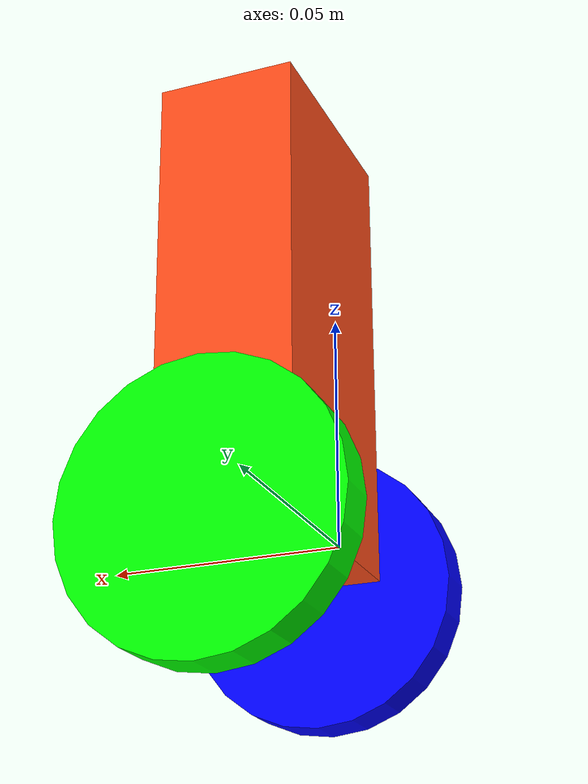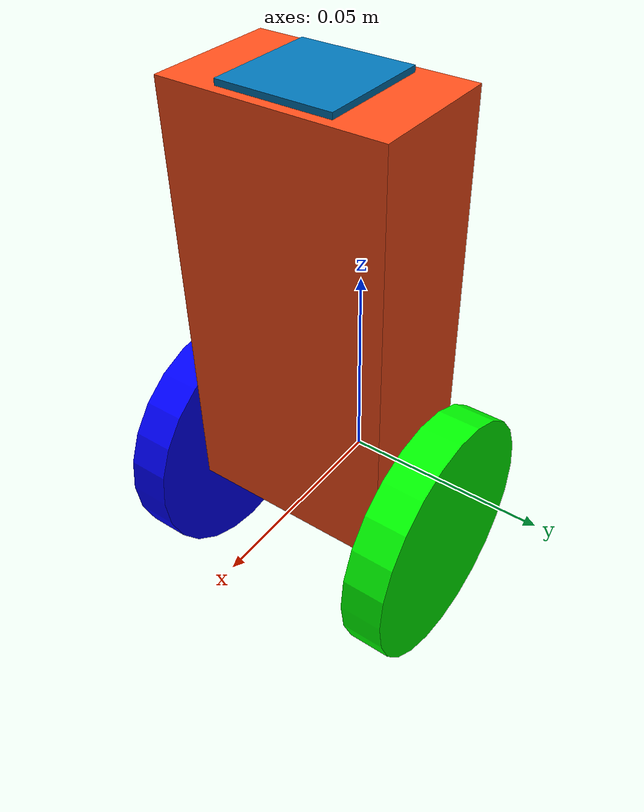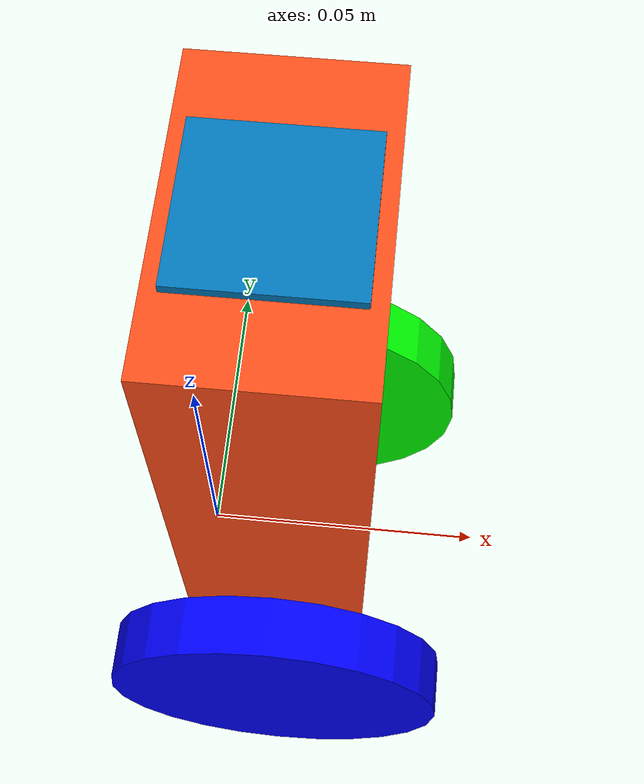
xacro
<?xml version="1.0" encoding="utf-8"?>
<robot xmlns:xacro="http://www.ros.org/wiki/xacro" name="mmtr">

    <xacro:arg name="sim_mode" default="true" />

    <xacro:include filename="inertial_macros.xacro" />
    <xacro:include filename="$(find balance_bot_description)/urdf/balance_bot_control.urdf.xacro" />
    <xacro:include filename="$(find balance_bot_description)/urdf/balance_bot_gazebo.urdf.xacro"/>

    <xacro:property name="chassis_mass" value="0.5" />
    <xacro:property name="chassis_length" value="0.03" />
    <xacro:property name="chassis_width" value="0.05" />
    <xacro:property name="chassis_height" value="0.1" />

    <xacro:property name="wheel_mass" value="0.2" />
    <xacro:property name="wheel_length" value="0.01" />
    <xacro:property name="wheel_radius" value="0.03" />

    <xacro:property name="imu_mass" value="0.0022"/>
    <xacro:property name="imu_height" value="0.0026"/>
    <xacro:property name="imu_width" value="0.0254"/>
    <xacro:property name="imu_length" value="0.0254"/>

    <material name="orange">
        <color rgba="1 0.3 0.1" />
    </material>

    <material name="blue">
        <color rgba="0 0 1" />
    </material>

    <material name="green">
        <color rgba="0 1 0" />
    </material>

    <material name="yellow">
        <color rgba="1 1 0"/>
    </material>

    <link name="base_footprint" />

    <joint name="chassis_joint" type="fixed">
        <parent link="base_footprint" />
        <child link="base_link" />
        <origin xyz="0.0 0.0 0.0" rpy="0.0 0.0 0.0" />
    </joint>

    <link name="base_link">
        <xacro:inertial_box mass="${chassis_mass}" x="${chassis_length}" y="${chassis_width}"
            z="${chassis_height}">
            <origin xyz="${chassis_length/2} 0 ${chassis_height/2}" rpy="0 0 0" />
        </xacro:inertial_box>

        <visual>
            <origin xyz="${chassis_length/2} 0 ${chassis_height/2}" />
            <geometry>
                <box size="${chassis_length} ${chassis_width} ${chassis_height}" />
            </geometry>
            <material name="orange" />
        </visual>

        <collision>
            <origin xyz="${chassis_length/2} 0 ${chassis_height/2}" />
            <geometry>
                <box size="${chassis_length} ${chassis_width} ${chassis_height}" />
            </geometry>
        </collision>
    </link>

    <gazebo reference="base_link">
        <material>Gazebo/Orange</material>
    </gazebo>

    <link name="right_wheel_link">
        <xacro:inertial_cylinder mass="${wheel_mass}" r="${wheel_radius}" l="${wheel_length}">
            <origin />
        </xacro:inertial_cylinder>

        <visual>
            <origin xyz="0.0 0.0 0.0" rpy="0.0 0.0 0.0" />
            <geometry>
                <cylinder radius="${wheel_radius}" length="${wheel_length}" />
            </geometry>
            <material name="blue" />
        </visual>

        <collision>
            <origin xyz="0.0 0.0 0.0" rpy="0.0 0.0 0.0" />
            <geometry>
                <cylinder radius="${wheel_radius}" length="${wheel_length}" />
            </geometry>
        </collision>
    </link>

    <gazebo reference="right_wheel_link">
        <material>Gazebo/Green</material>
    </gazebo>

    <link name="left_wheel_link">
        <xacro:inertial_cylinder mass="${wheel_mass}" r="${wheel_radius}" l="${wheel_length}">
            <origin />
        </xacro:inertial_cylinder>

        <visual>
            <origin xyz="0.0 0.0 0.0" rpy="0.0 0.0 0.0" />
            <geometry>
                <cylinder radius="${wheel_radius}" length="${wheel_length}" />
            </geometry>
            <material name="green" />
        </visual>
        <collision>
            <origin xyz="0.0 0.0 0.0" rpy="0.0 0.0 0.0" />
            <geometry>
                <cylinder radius="${wheel_radius}" length="${wheel_length}" />
            </geometry>
        </collision>
    </link>

    <gazebo reference="left_wheel_link">
        <material>Gazebo/Red</material>
    </gazebo>

    <link name="imu_link">
        <xacro:inertial_box mass="${imu_mass}" x="${imu_length}" y="${imu_width}"
            z="${imu_height}">
            <origin xyz="${chassis_length/2} 0 ${chassis_height/2}" />
        </xacro:inertial_box>
        <visual>
            <origin xyz="${chassis_length/2} 0 0" />
            <geometry>
                <box size="${imu_length} ${imu_width} ${imu_height}" />
            </geometry>
        </visual>
        <collision>
            <origin xyz="${chassis_length/2} 0 0" />
            <geometry>
                <box size="${imu_length} ${imu_width} ${imu_height}" />
            </geometry>
        </collision>
    </link>

    <joint name="imu_joint" type="fixed">
        <origin xyz="0.0 0.0 ${chassis_height}" rpy="0.0 0.0 0.0" />
        <parent link="base_link" />
        <child link="imu_link" />
        <axis xyz="0.0 0.0 0.0" />
    </joint>

    <joint name="left_wheel_joint" type="continuous">
        <origin xyz="${chassis_length/2} 0.031 0.0" rpy="${pi/2} 0.0 0.0" />
        <parent link="base_link" />
        <child link="left_wheel_link" />
        <axis xyz="0.0 0.0 1" />
        <limit effort="5.0" velocity="20.0" />
    </joint>

    <joint name="right_wheel_joint" type="continuous">
        <origin xyz="${chassis_length/2} -0.031 0.0" rpy="${pi/2} 0.0 0.0" />
        <parent link="base_link" />
        <child link="right_wheel_link" />
        <axis xyz="0.0 0.0 1" />
        <limit effort="5.0" velocity="20.0" />
    </joint>
</robot>

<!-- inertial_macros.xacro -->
<robot xmlns:xacro="http://www.ros.org/wiki/xacro">
    <xacro:macro name="inertial_box" params="mass x y z *origin">
        <inertial>
            <xacro:insert_block name="origin" />
            <mass value="${mass}" />
            <inertia ixx="${(1/12) * mass * (y*y + z*z)}" ixy="0.0" ixz="0.0"
                iyy="${(1/12) * mass * (x*x + z*z)}" iyz="0.0"
                izz="${(1/12) * mass * (x*x + y*y)}" />
        </inertial>
    </xacro:macro>

    <xacro:macro name="inertial_cylinder" params="mass r l *origin">
        <inertial>
            <xacro:insert_block name="origin" />
            <mass value="${mass}" />
            <inertia ixx="${(1/4) * mass * (r*r) + 1/12 * mass * (l*l)}" ixy="0.0" ixz="0.0"
                iyy="${(1/4) * mass * (r*r) + 1/12 * mass * (l*l)}" iyz="0.0"
                izz="${(1/2) * mass * (r*r)}" />
        </inertial>
    </xacro:macro>
</robot>
